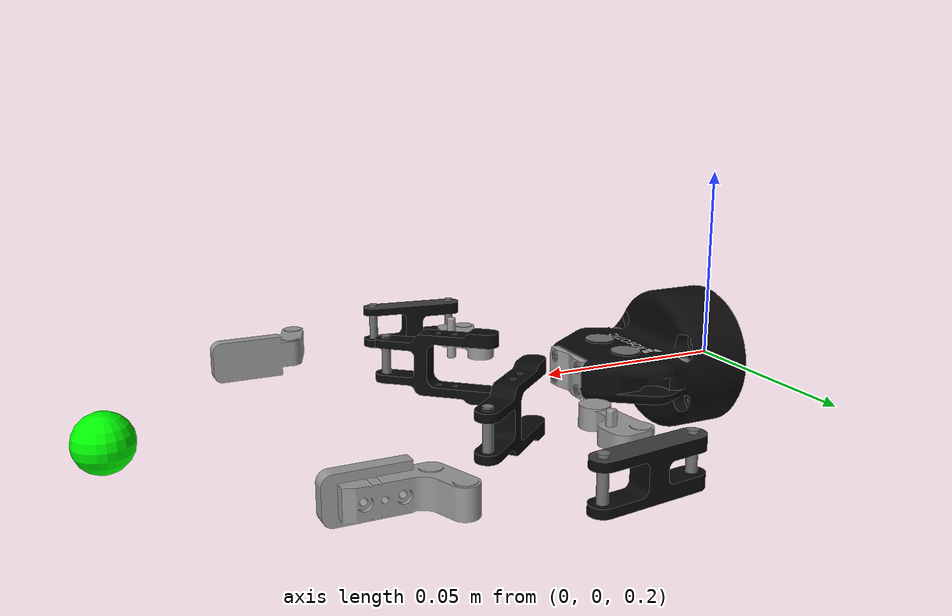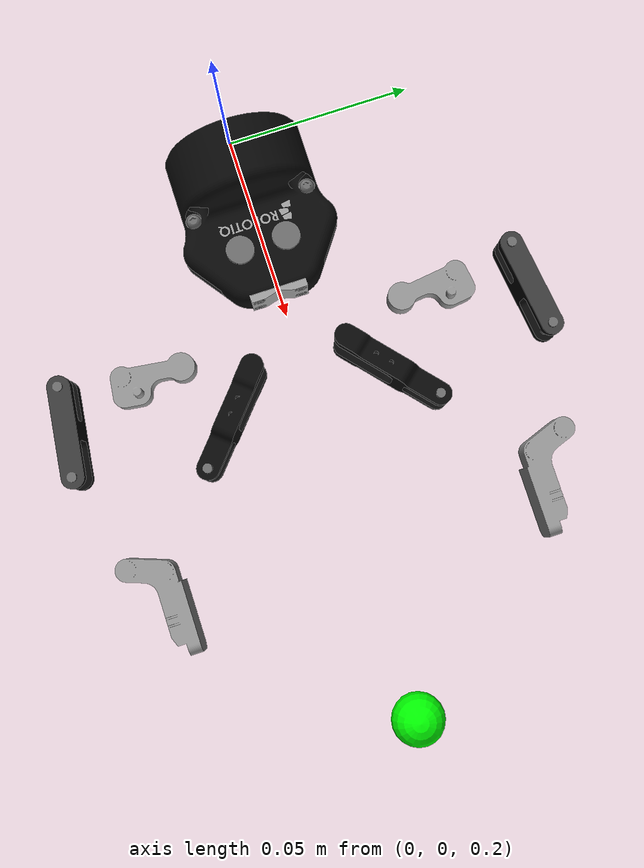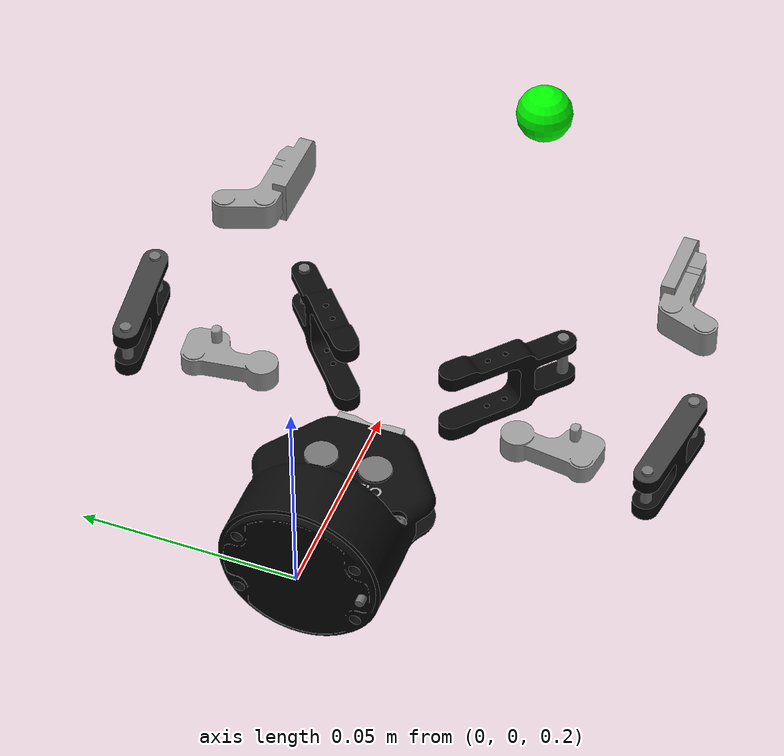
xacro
<?xml version="1.0" ?>
<robot name="robotiq_85_gripper" xmlns:xacro="http://wiki.ros.org/xacro">
    <xacro:include filename="$(find robotiq_85_description)/urdf/robotiq_85_gripper_macro_ros2.urdf.xacro" />

    <link name="world"/>

    <xacro:robotiq_85_gripper prefix="" parent="world" >
        <origin xyz="0 0 0.2" rpy="0 0 0"/>
    </xacro:robotiq_85_gripper>

    <gazebo>
        <plugin filename="libgazebo_ros2_control.so" name="gazebo_ros2_control">
            <parameters>$(find robotiq_85_description)/config/gripper_controller.yaml</parameters>
        </plugin>
    </gazebo>
</robot>

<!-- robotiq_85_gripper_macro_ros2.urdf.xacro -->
<robot name="robotiq_85_gripper" xmlns:xacro="http://wiki.ros.org/xacro">
	<xacro:include filename="$(find robotiq_85_description)/urdf/robotiq_85_gripper.transmission.xacro" />

	<xacro:macro name="robotiq_85_gripper" params="prefix parent *origin ">

		 <link name="${prefix}robotiq_85_base_link">
			<!-- Visual aid for grasping -->
			<visual>
				<origin xyz="0.16 0 0" rpy="0 0 0" />
				<geometry>
					<sphere radius="0.007"/>
				</geometry>
				<material name="">
					<color rgba="0 1.0 0 1.0"/>
				</material>
			</visual>
			<!-- Gripper body -->
			<visual>
				<geometry>
					<mesh filename="package://robotiq_85_description/meshes/visual/robotiq_85_base_link.dae"/>
				</geometry>
			</visual>
			<collision>
				<geometry>
					<mesh filename="package://robotiq_85_description/meshes/collision/robotiq_85_base_link.stl"/>
				</geometry>
			</collision>
			<inertial>
				<mass value="0.636951" />
				<origin xyz="0.0 0.0 0.0" />
				<inertia ixx = "0.000380" ixy = "0.000000" ixz = "0.000000"
					iyx = "0.000000" iyy = "0.001110" iyz = "0.000000"
					izx = "0.000000" izy = "0.000000" izz = "0.001171" />
			</inertial>
		</link>

		<link name="${prefix}robotiq_85_left_knuckle_link">
			<visual>
				<geometry>
					<mesh filename="package://robotiq_85_description/meshes/visual/robotiq_85_knuckle_link.dae"/>
				</geometry>
			</visual>
			<collision>
				<geometry>
					<mesh filename="package://robotiq_85_description/meshes/collision/robotiq_85_knuckle_link.stl"/>
				</geometry>
			</collision>
			<inertial>
				<mass value="0.018491" />
				<origin xyz="0.0 0.0 0.0" />
				<inertia ixx = "0.000009" ixy = "-0.000001" ixz = "0.000000"
					iyx = "-0.000001" iyy = "0.000001" iyz = "0.000000"
					izx = "0.000000" izy = "0.000000" izz = "0.000010" />
			</inertial>
		</link>

		<link name="${prefix}robotiq_85_right_knuckle_link">
			<visual>
				<geometry>
					<mesh filename="package://robotiq_85_description/meshes/visual/robotiq_85_knuckle_link.dae"/>
				</geometry>
			</visual>
			<collision>
				<geometry>
					<mesh filename="package://robotiq_85_description/meshes/collision/robotiq_85_knuckle_link.stl"/>
				</geometry>
			</collision>
			<inertial>
				<mass value="0.018491" />
				<origin xyz="0.0 0.0 0.0" />
				<inertia ixx = "0.000009" ixy = "-0.000001" ixz = "0.000000"
					iyx = "-0.000001" iyy = "0.000001" iyz = "0.000000"
					izx = "0.000000" izy = "0.000000" izz = "0.000010" />
			</inertial>
		</link>

		<link name="${prefix}robotiq_85_left_finger_link">
			<visual>
				<geometry>
					<mesh filename="package://robotiq_85_description/meshes/visual/robotiq_85_finger_link.dae"/>
				</geometry>
			</visual>
			<collision>
				<geometry>
					<mesh filename="package://robotiq_85_description/meshes/collision/robotiq_85_finger_link.stl"/>
				</geometry>
			</collision>
			<inertial>
				<mass value="0.027309" />
				<origin xyz="0.0 0.0 0.0" />
				<inertia ixx = "0.000003" ixy = "-0.000002" ixz = "0.000000"
					iyx = "-0.000002" iyy = "0.000021" iyz = "0.000000"
					izx = "0.000000" izy = "0.000000" izz = "0.000020" />
			</inertial>
		</link>

		<link name="${prefix}robotiq_85_right_finger_link">
			<visual>
				<geometry>
					<mesh filename="package://robotiq_85_description/meshes/visual/robotiq_85_finger_link.dae"/>
				</geometry>
			</visual>
			<collision>
				<geometry>
					<mesh filename="package://robotiq_85_description/meshes/collision/robotiq_85_finger_link.stl"/>
				</geometry>
			</collision>
			<inertial>
				<mass value="0.027309" />
				<origin xyz="0.0 0.0 0.0" />
				<inertia ixx = "0.000003" ixy = "-0.000002" ixz = "0.000000"
					iyx = "-0.000002" iyy = "0.000021" iyz = "0.000000"
					izx = "0.000000" izy = "0.000000" izz = "0.000020" />
			</inertial>
		</link>

		<link name="${prefix}robotiq_85_left_inner_knuckle_link">
			<visual>
				<geometry>
					<mesh filename="package://robotiq_85_description/meshes/visual/robotiq_85_inner_knuckle_link.dae"/>
				</geometry>
			</visual>
			<collision>
				<geometry>
					<mesh filename="package://robotiq_85_description/meshes/collision/robotiq_85_inner_knuckle_link.stl"/>
				</geometry>
			</collision>
			<inertial>
				<mass value="0.029951" />
				<origin xyz="0.0 0.0 0.0" />
				<inertia ixx = "0.000039" ixy = "0.000000" ixz = "0.000000"
					iyx = "0.000000" iyy = "0.000005" iyz = "0.000000"
					izx = "0.000000" izy = "0.000000" izz = "0.000035" />
			</inertial>
		</link>

		<link name="${prefix}robotiq_85_right_inner_knuckle_link">
			<visual>
				<geometry>
					<mesh filename="package://robotiq_85_description/meshes/visual/robotiq_85_inner_knuckle_link.dae"/>
				</geometry>
			</visual>
			<collision>
				<geometry>
					<mesh filename="package://robotiq_85_description/meshes/collision/robotiq_85_inner_knuckle_link.stl"/>
				</geometry>
			</collision>
			<inertial>
				<mass value="0.029951" />
				<origin xyz="0.0 0.0 0.0" />
				<inertia ixx = "0.000039" ixy = "0.000000" ixz = "0.000000"
					iyx = "0.000000" iyy = "0.000005" iyz = "0.000000"
					izx = "0.000000" izy = "0.000000" izz = "0.000035" />
			</inertial>
		</link>

		<link name="${prefix}robotiq_85_left_finger_tip_link">
			<visual>
				<geometry>
					<mesh filename="package://robotiq_85_description/meshes/visual/robotiq_85_finger_tip_link.dae"/>
				</geometry>
			</visual>
			<collision>
				<geometry>
					<mesh filename="package://robotiq_85_description/meshes/collision/robotiq_85_finger_tip_link.stl"/>
				</geometry>
			</collision>
			<inertial>
				<mass value="0.019555" />
				<origin xyz="0.0 0.0 0.0" />
				<inertia ixx = "0.000002" ixy = "0.000000" ixz = "0.000000"
					iyx = "0.000000" iyy = "0.000005" iyz = "0.000000"
					izx = "0.000000" izy = "0.000000" izz = "0.000006" />
			</inertial>
		</link>

		<link name="${prefix}robotiq_85_right_finger_tip_link">
			<visual>
				<geometry>
					<mesh filename="package://robotiq_85_description/meshes/visual/robotiq_85_finger_tip_link.dae"/>
				</geometry>
			</visual>
			<collision>
				<geometry>
					<mesh filename="package://robotiq_85_description/meshes/collision/robotiq_85_finger_tip_link.stl"/>
				</geometry>
			</collision>
			<inertial>
				<mass value="0.019555" />
				<origin xyz="0.0 0.0 0.0" />
				<inertia ixx = "0.000002" ixy = "0.000000" ixz = "0.000000"
					iyx = "0.000000" iyy = "0.000005" iyz = "0.000000"
					izx = "0.000000" izy = "0.000000" izz = "0.000006" />
			</inertial>
		</link>

		<gazebo reference="$${prefix}robotiq_85_base_link">
			<implicitSpringDamper>1</implicitSpringDamper>
			<kp>100000000.0</kp>
			<kd>1.0</kd>
			<mu1>100000</mu1>
			<mu2>100000</mu2>
			<material name="">
				<color rgba="0 1.0 0 1.0"/>
			</material>
		</gazebo>

		<gazebo reference="${prefix}robotiq_85_left_knuckle_link">
			<implicitSpringDamper>1</implicitSpringDamper>
			<kp>100000000.0</kp>
			<kd>1.0</kd>
			<mu1>100000</mu1>
			<mu2>100000</mu2>
			<material>Gazebo/Grey</material>
		</gazebo>

		<gazebo reference="${prefix}robotiq_85_right_knuckle_link">
			<implicitSpringDamper>1</implicitSpringDamper>
			<kp>100000000.0</kp>
			<kd>1.0</kd>
			<mu1>100000</mu1>
			<mu2>100000</mu2>
			<material>Gazebo/Grey</material>
		</gazebo>

		<gazebo reference="${prefix}robotiq_85_left_finger_link">
			<implicitSpringDamper>1</implicitSpringDamper>
			<kp>100000000.0</kp>
			<kd>1.0</kd>
			<mu1>100000</mu1>
			<mu2>100000</mu2>
		</gazebo>

		<gazebo reference="${prefix}robotiq_85_right_finger_link">
			<implicitSpringDamper>1</implicitSpringDamper>
			<kp>100000000.0</kp>
			<kd>1.0</kd>
			<mu1>100000</mu1>
			<mu2>100000</mu2>
		</gazebo>

		<gazebo reference="${prefix}robotiq_85_left_inner_knuckle_link">
			<implicitSpringDamper>1</implicitSpringDamper>
			<kp>100000000.0</kp>
			<kd>1.0</kd>
			<mu1>100000</mu1>
			<mu2>100000</mu2>
		</gazebo>

		<gazebo reference="${prefix}robotiq_85_right_inner_knuckle_link">
			<implicitSpringDamper>1</implicitSpringDamper>
			<kp>100000000.0</kp>
			<kd>1.0</kd>
			<mu1>100000</mu1>
			<mu2>100000</mu2>
		</gazebo>

		<gazebo reference="${prefix}robotiq_85_left_finger_tip_link">
			<implicitSpringDamper>1</implicitSpringDamper>
			<kp>100000000.0</kp>
			<kd>1.0</kd>
			<mu1>100000</mu1>
			<mu2>100000</mu2>
			<material>Gazebo/Grey</material>
		</gazebo>

		<gazebo reference="${prefix}robotiq_85_right_finger_tip_link">
			<implicitSpringDamper>1</implicitSpringDamper>
			<kp>1000000.0</kp>
			<kd>100.0</kd>
			<mu1>100000</mu1>
			<mu2>100000</mu2>
			<material>Gazebo/Grey</material>
		</gazebo>

		<joint name="${prefix}robotiq_85_base_joint" type="fixed">
			<parent link="${parent}"/>
			<child link="${prefix}robotiq_85_base_link"/>
			<xacro:insert_block name="origin"/>
		</joint>

		<joint name="${prefix}robotiq_85_left_knuckle_joint" type="revolute">
			<parent link="${prefix}robotiq_85_base_link"/>
			<child link="${prefix}robotiq_85_left_knuckle_link"/>
			<axis xyz="0 0 1"/>
			<origin rpy="${pi} 0.0 0.0" xyz="0.05490451627 0.03060114443 0.0"/>
			<limit lower="0.0" upper="0.804" velocity="2.0" effort="1000"/>
			<dynamics damping="50" friction="5"/>
		</joint>

		<joint name="${prefix}robotiq_85_right_knuckle_joint" type="revolute">
			<parent link="${prefix}robotiq_85_base_link"/>
			<child link="${prefix}robotiq_85_right_knuckle_link"/>
			<axis xyz="0 0 1"/>
			<origin rpy="0.0 0.0 0.0" xyz="0.05490451627 -0.03060114443 0.0"/>
			<limit lower="0.0" upper="0.804" velocity="2.0" effort="1000"/>
			<dynamics damping="50" friction="5"/>
		</joint>

		<joint name="${prefix}robotiq_85_left_finger_joint" type="fixed">
			<parent link="${prefix}robotiq_85_left_knuckle_link"/>
			<child link="${prefix}robotiq_85_left_finger_link"/>
			<origin xyz="-0.00408552455 -0.03148604435 0.0" rpy="0 0 0" />
		</joint>

		<joint name="${prefix}robotiq_85_right_finger_joint" type="fixed">
			<parent link="${prefix}robotiq_85_right_knuckle_link"/>
			<child link="${prefix}robotiq_85_right_finger_link"/>
			<origin xyz="-0.00408552455 -0.03148604435 0.0" rpy="0 0 0" />
		</joint>

		<joint name="${prefix}robotiq_85_left_inner_knuckle_joint" type="continuous">
			<parent link="${prefix}robotiq_85_base_link"/>
			<child link="${prefix}robotiq_85_left_inner_knuckle_link"/>
			<axis xyz="0 0 1"/>
			<origin xyz="0.06142 0.0127 0" rpy="${pi} 0.0 0.0" />
			<limit lower="-3.14" upper="3.14" velocity="100.0" effort="0.1"/>
		</joint>

		<joint name="${prefix}robotiq_85_right_inner_knuckle_joint" type="continuous">
			<parent link="${prefix}robotiq_85_base_link"/>
			<child link="${prefix}robotiq_85_right_inner_knuckle_link"/>
			<axis xyz="0 0 1"/>
			<origin xyz="0.06142 -0.0127 0" rpy="0 0 0"/>
			<limit lower="-3.14" upper="3.14" velocity="100.0" effort="0.1"/>
		</joint>

		<joint name="${prefix}robotiq_85_left_finger_tip_joint" type="continuous">
			<parent link="${prefix}robotiq_85_left_inner_knuckle_link"/>
			<child link="${prefix}robotiq_85_left_finger_tip_link"/>
			<axis xyz="0 0 1"/>
			<origin xyz="0.04303959807 -0.03759940821 0.0" rpy="0.0 0.0 0.0"/>
			<limit lower="-3.14" upper="3.14" velocity="100.0" effort="0.1"/>
		</joint>

		<joint name="${prefix}robotiq_85_right_finger_tip_joint" type="continuous">
			<parent link="${prefix}robotiq_85_right_inner_knuckle_link"/>
			<child link="${prefix}robotiq_85_right_finger_tip_link"/>
			<axis xyz="0 0 1"/>
			<origin rpy="0.0 0.0 0.0" xyz="0.04303959807 -0.03759940821  0.0"/>
			<limit lower="-3.14" upper="3.14" velocity="100.0" effort="0.1"/>
		</joint>

		<xacro:robotiq_85_gripper_transmission prefix="${prefix}" />

		<ros2_control name="GazeboSimSystem" type="system">
			<hardware>
				<plugin>gazebo_ros2_control/GazeboSystem</plugin>
			</hardware>
			<joint name="${prefix}robotiq_85_left_knuckle_joint">
				<command_interface name="position"/>
				<state_interface name="position">
					<param name="initial_value">0.15</param>
				</state_interface>
				<state_interface name="velocity"/>
				<state_interface name="effort"/>
			</joint>
			<joint name="${prefix}robotiq_85_right_knuckle_joint">
				<param name="mimic">robotiq_85_left_knuckle_joint</param>
				<param name="multiplier">1</param>
				<command_interface name="position"/>
				<state_interface name="position"/>
				<state_interface name="velocity"/>
				<state_interface name="effort"/>
			</joint>
			<joint name="${prefix}robotiq_85_left_inner_knuckle_joint">
				<param name="mimic">robotiq_85_left_knuckle_joint</param>
				<param name="multiplier">1</param>
				<param name="offset">0</param>
				<command_interface name="position"/>
				<state_interface name="position"/>
				<state_interface name="velocity"/>
				<state_interface name="effort"/>
			</joint>
			<joint name="${prefix}robotiq_85_right_inner_knuckle_joint">
				<param name="mimic">robotiq_85_left_knuckle_joint</param>
				<param name="multiplier">1</param>
				<param name="offset">0</param>
				<command_interface name="position"/>
				<state_interface name="position"/>
				<state_interface name="velocity"/>
				<state_interface name="effort"/>
			</joint>
			<joint name="${prefix}robotiq_85_left_finger_tip_joint">
				<param name="mimic">robotiq_85_left_knuckle_joint</param>
				<param name="multiplier">-1</param>
				<param name="offset">0</param>
				<command_interface name="position"/>
				<state_interface name="position"/>
				<state_interface name="velocity"/>
				<state_interface name="effort"/>
			</joint>
			<joint name="${prefix}robotiq_85_right_finger_tip_joint">
				<param name="mimic">robotiq_85_left_knuckle_joint</param>
				<param name="multiplier">-1</param>
				<param name="offset">0</param>
				<command_interface name="position"/>
				<state_interface name="position"/>
				<state_interface name="velocity"/>
				<state_interface name="effort"/>
			</joint>
		</ros2_control>
	</xacro:macro>
</robot>
